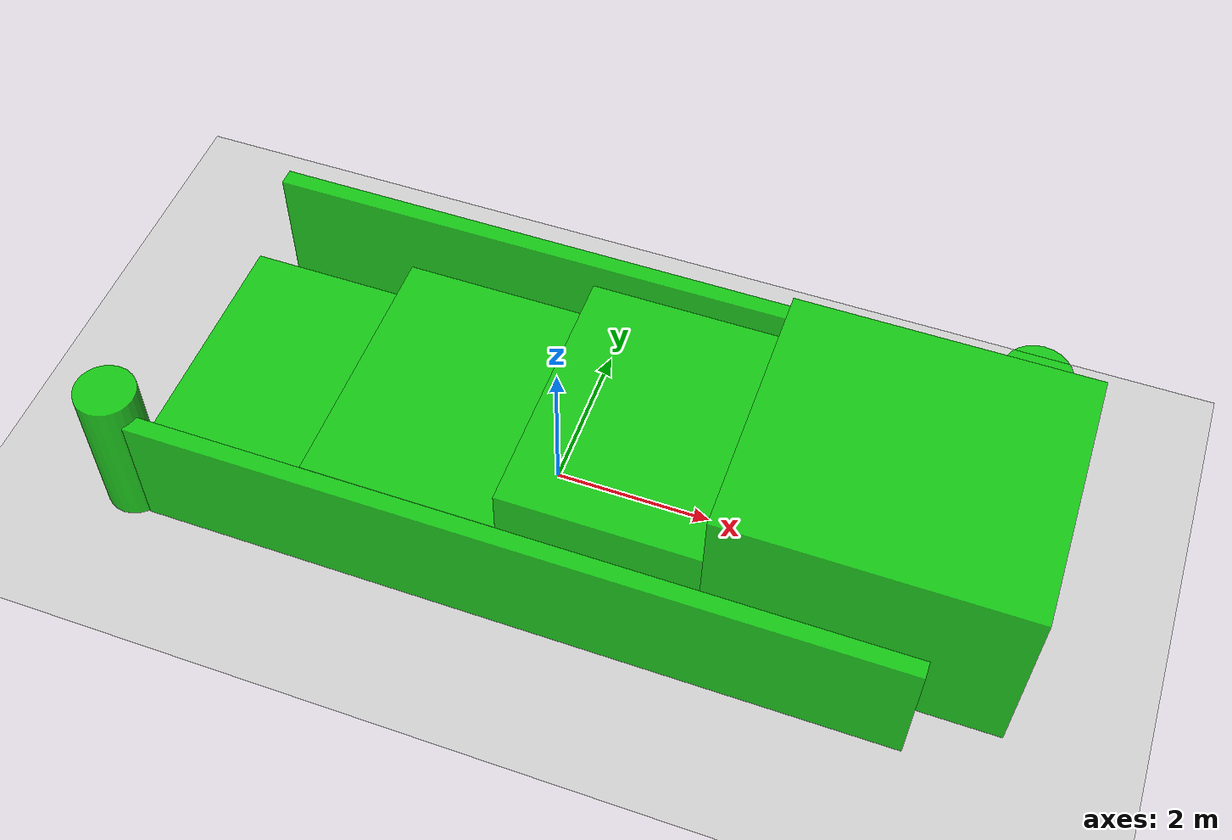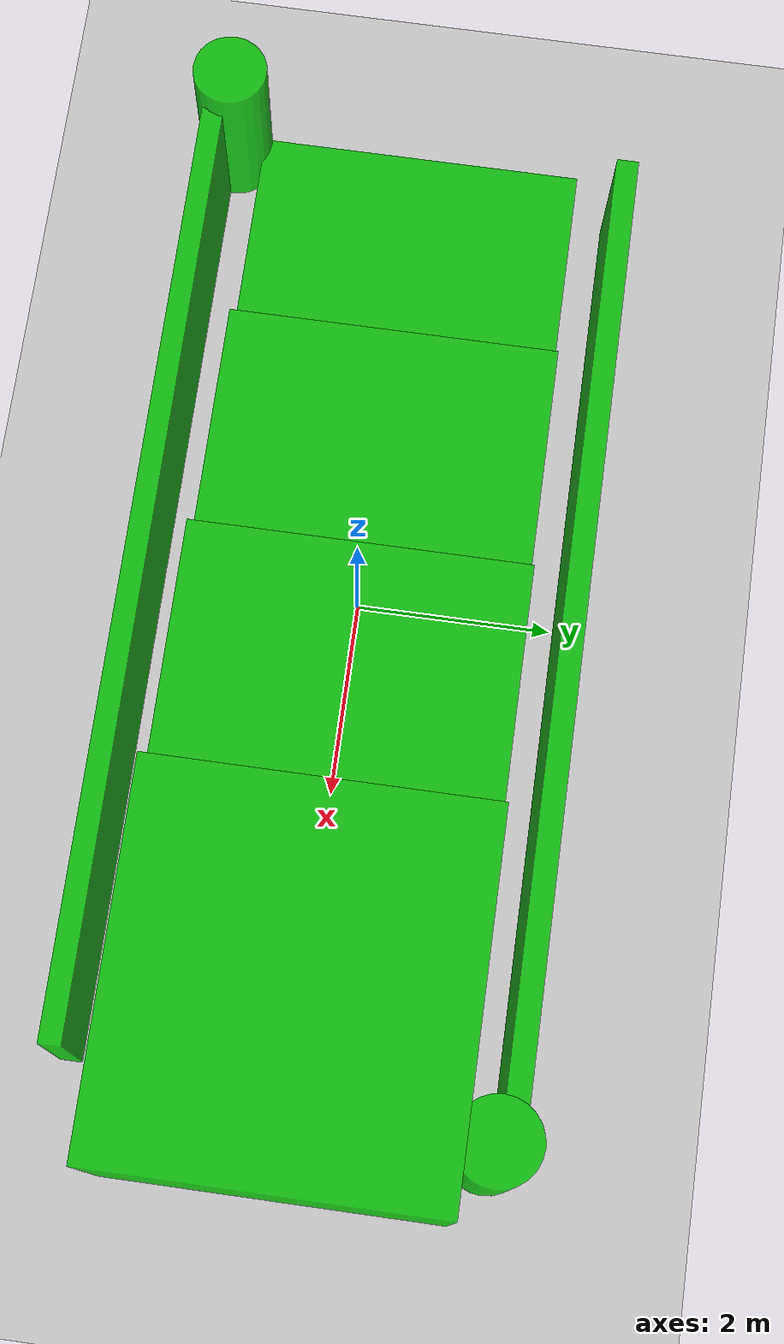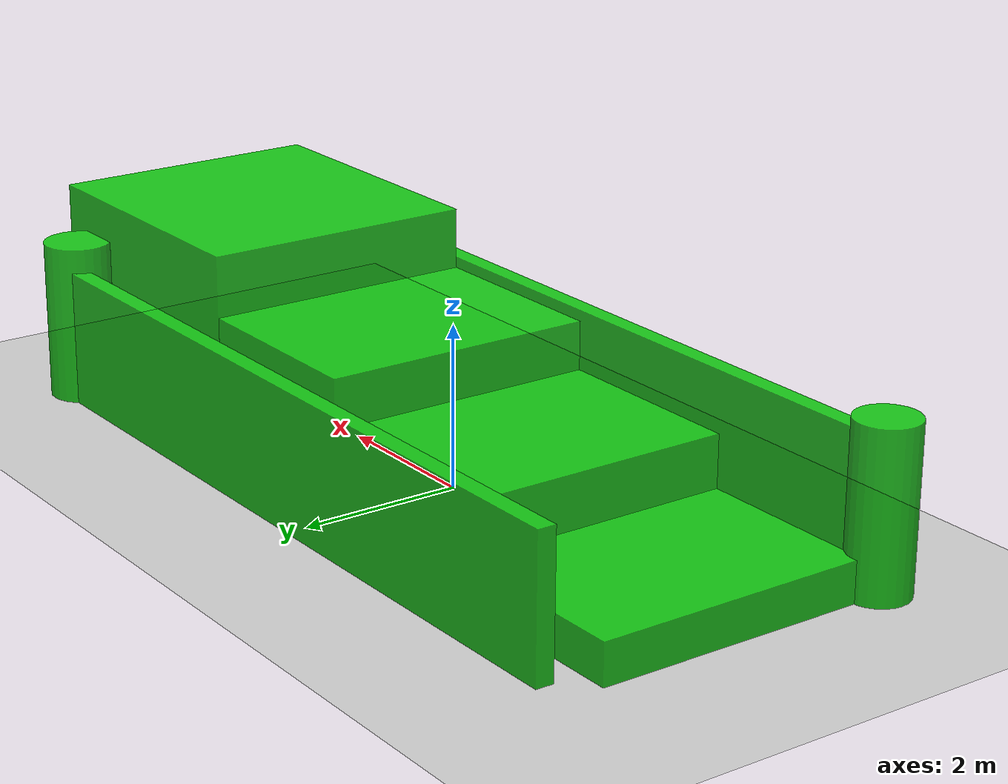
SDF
<?xml version="1.0"?>
<sdf version="1.6">
  <world name="stair_climb">
    <include><uri>model://sun</uri></include>
    <include><uri>model://ground_plane</uri></include>
    <physics name="default_physics" default="0" type="ode">
      <gravity>0 0 -9.8066</gravity>
      <ode>
        <solver><type>quick</type><iters>10</iters><sor>1.3</sor></solver>
        <constraints>
          <cfm>0</cfm>
          <erp>0.2</erp>
          <contact_max_correcting_vel>100</contact_max_correcting_vel>
          <contact_surface_layer>0.001</contact_surface_layer>
        </constraints>
      </ode>
      <max_step_size>0.004</max_step_size>
      <real_time_factor>1</real_time_factor>
      <real_time_update_rate>250</real_time_update_rate>
    </physics>
    <model name="stair_climb_obstacle_0">
      <static>true</static>
      <pose>-4.900 -2.000 1.000 0 0 0</pose>
      <link name="link">
        <collision name="collision">
          <geometry><cylinder><radius>0.380</radius><length>2.000</length></cylinder></geometry>
        </collision>
        <visual name="visual">
          <geometry><cylinder><radius>0.380</radius><length>2.000</length></cylinder></geometry>
          <material><ambient>0 0.8 0 0.85</ambient><diffuse>0 0.8 0 0.85</diffuse></material>
        </visual>
      </link>
    </model>
    <model name="stair_climb_obstacle_1">
      <static>true</static>
      <pose>5.300 2.000 1.000 0 0 0</pose>
      <link name="link">
        <collision name="collision">
          <geometry><cylinder><radius>0.420</radius><length>2.000</length></cylinder></geometry>
        </collision>
        <visual name="visual">
          <geometry><cylinder><radius>0.420</radius><length>2.000</length></cylinder></geometry>
          <material><ambient>0 0.8 0 0.85</ambient><diffuse>0 0.8 0 0.85</diffuse></material>
        </visual>
      </link>
    </model>
    <model name="stair_step_0">
      <static>true</static>
      <pose>-3.800 0.000 0.250 0 0 0.000</pose>
      <link name="link">
        <collision name="collision">
          <geometry><box><size>2.300 3.400 0.500</size></box></geometry>
        </collision>
        <visual name="visual">
          <geometry><box><size>2.300 3.400 0.500</size></box></geometry>
          <material><ambient>0 0.8 0 0.85</ambient><diffuse>0 0.8 0 0.85</diffuse></material>
        </visual>
      </link>
    </model>
    <model name="stair_step_1">
      <static>true</static>
      <pose>-1.400 0.000 0.575 0 0 0.000</pose>
      <link name="link">
        <collision name="collision">
          <geometry><box><size>2.500 3.400 1.150</size></box></geometry>
        </collision>
        <visual name="visual">
          <geometry><box><size>2.500 3.400 1.150</size></box></geometry>
          <material><ambient>0 0.8 0 0.85</ambient><diffuse>0 0.8 0 0.85</diffuse></material>
        </visual>
      </link>
    </model>
    <model name="stair_step_2">
      <static>true</static>
      <pose>1.100 0.000 0.875 0 0 0.000</pose>
      <link name="link">
        <collision name="collision">
          <geometry><box><size>2.500 3.400 1.750</size></box></geometry>
        </collision>
        <visual name="visual">
          <geometry><box><size>2.500 3.400 1.750</size></box></geometry>
          <material><ambient>0 0.8 0 0.85</ambient><diffuse>0 0.8 0 0.85</diffuse></material>
        </visual>
      </link>
    </model>
    <model name="upper_landing">
      <static>true</static>
      <pose>4.200 0.000 1.250 0 0 0.000</pose>
      <link name="link">
        <collision name="collision">
          <geometry><box><size>3.700 3.400 2.500</size></box></geometry>
        </collision>
        <visual name="visual">
          <geometry><box><size>3.700 3.400 2.500</size></box></geometry>
          <material><ambient>0 0.8 0 0.85</ambient><diffuse>0 0.8 0 0.85</diffuse></material>
        </visual>
      </link>
    </model>
    <model name="stair_side_wall_lower">
      <static>true</static>
      <pose>0.200 -2.150 0.850 0 0 0.000</pose>
      <link name="link">
        <collision name="collision">
          <geometry><box><size>9.600 0.220 1.700</size></box></geometry>
        </collision>
        <visual name="visual">
          <geometry><box><size>9.600 0.220 1.700</size></box></geometry>
          <material><ambient>0 0.8 0 0.85</ambient><diffuse>0 0.8 0 0.85</diffuse></material>
        </visual>
      </link>
    </model>
    <model name="stair_side_wall_upper">
      <static>true</static>
      <pose>0.200 2.150 0.850 0 0 0.000</pose>
      <link name="link">
        <collision name="collision">
          <geometry><box><size>9.600 0.220 1.700</size></box></geometry>
        </collision>
        <visual name="visual">
          <geometry><box><size>9.600 0.220 1.700</size></box></geometry>
          <material><ambient>0 0.8 0 0.85</ambient><diffuse>0 0.8 0 0.85</diffuse></material>
        </visual>
      </link>
    </model>
  </world>
</sdf>
